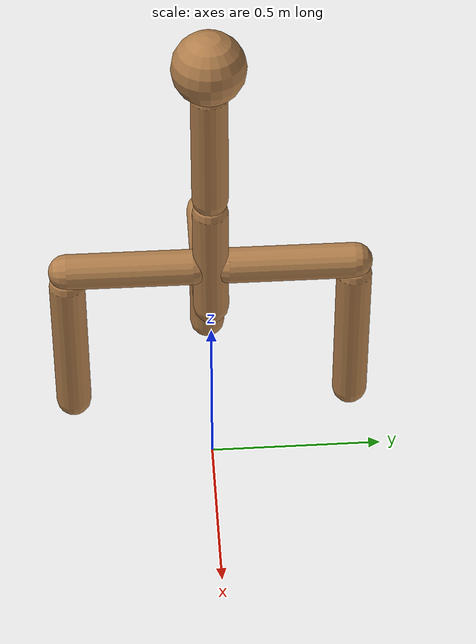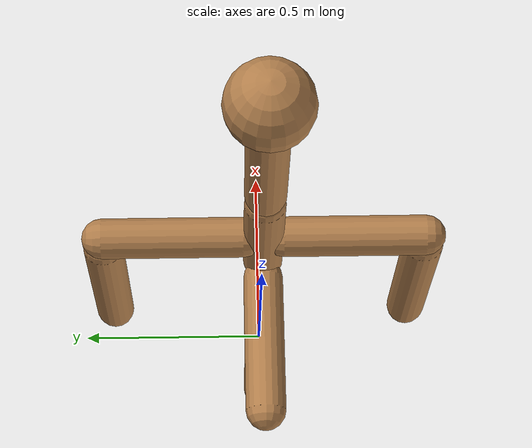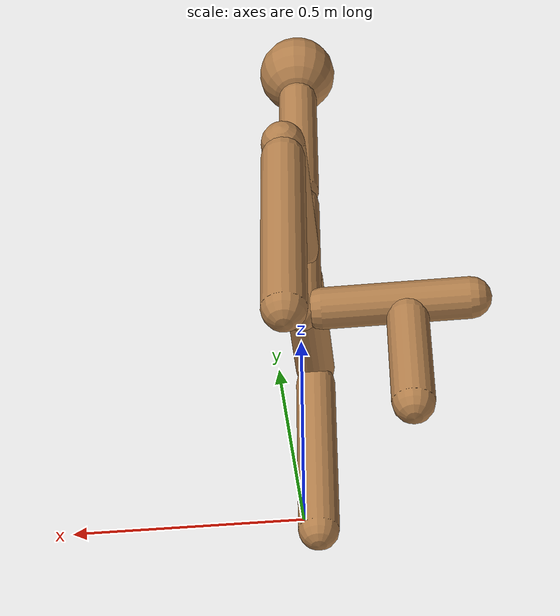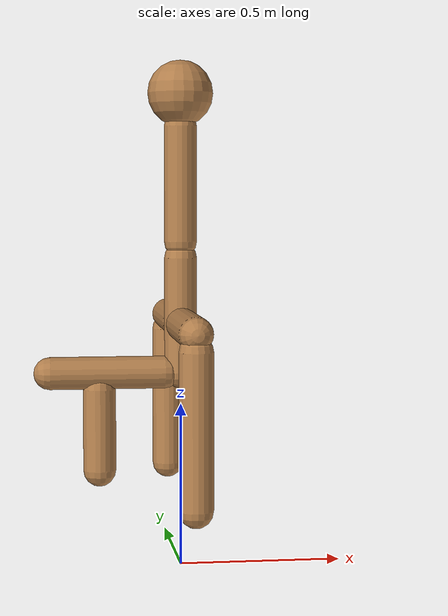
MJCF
<?xml version='1.0' encoding='UTF-8'?>
<!-- Universal Animal Template: unimal -->
<mujoco model="unimal">
  <compiler angle="degree"/>
  <size njmax="2000" nconmax="500"/>
  <option timestep=".005">
    <flag filterparent="disable"/>
  </option>
  <!-- Common defaults to make search space tractable -->
  <default>
    <!-- Define motor defaults -->
    <motor ctrlrange="-1 1" ctrllimited="true"/>
    <!-- Define joint defaults -->
    <default class="normal_joint">
      <joint type="hinge" damping="1" stiffness="1" armature="1" limited="true" range="-120 120" solimplimit="0 0.99 0.01"/>
    </default>
    <default class="walker_joint">
      <joint type="hinge" damping="0.2" stiffness="1" armature=".01" limited="true" range="-120 120" solimplimit="0 0.99 0.01"/>
    </default>
    <default class="stiff_joint">
      <joint type="hinge" damping="5" stiffness="10" armature=".01" limited="true" solimplimit="0 0.99 0.01"/>
    </default>
    <default class="free">
      <joint limited="false" damping="0" armature="0" stiffness="0"/>
    </default>
    <default class="growth_site">
      <site size="1e-6 1e-6 1e-6"/>
    </default>
    <default class="torso_growth_site">
      <site size="1e-6 1e-6 1e-6"/>
    </default>
    <default class="mirror_growth_site">
      <site size="1e-6 1e-6 1e-6"/>
    </default>
    <default class="btm_pos_site">
      <site size="1e-6 1e-6 1e-6"/>
    </default>
    <default class="box_face_site">
      <site size="1e-6 1e-6 1e-6"/>
    </default>
    <default class="imu_vel">
      <site type="box" size="0.05" rgba="1 0 0 0"/>
    </default>
    <default class="touch_site">
      <site group="3" rgba="0 0 1 .3"/>
    </default>
    <default class="food_site">
      <site material="food" size="0.15"/>
    </default>
    <!-- Define geom defaults -->
    <geom type="capsule" condim="3" friction="0.7 0.1 0.1" material="self"/>
  </default>
  <worldbody>
    <light diffuse="1 1 1" directional="true" exponent="1" pos="0 0 8" specular="0.1 0.1 0.1" dir="0 0 -1"/>
    <!-- Programatically generated xml goes here -->
    <body name="torso/0" pos="0 0 1.45">
      <joint name="root" type="free" class="free"/>
      <site name="root" class="imu_vel"/>
      <geom name="torso/0" type="sphere" size="0.1" condim="3" density="900"/>
      <camera name="side" pos="0 -7 2" xyaxes="1 0 0 0 1 2" mode="trackcom"/>
      <site name="torso/0" class="growth_site" pos="0 0 0"/>
      <site name="torso/btm_pos/0" class="btm_pos_site" pos="0 0 -0.1"/>
      <site name="torso/touch/0" class="touch_site" size="0.11"/>
      <site name="torso/horizontal_y/0" class="torso_growth_site" pos="-0.1 0 0"/>
      <body name="limb/0" pos="0.0 0.0 -0.1">
        <joint name="limbx/0" type="hinge" class="normal_joint" range="-30 0" pos="0.0 0.0 0.05" axis="1.0 0.0 0.0"/>
        <geom name="limb/0" type="capsule" fromto="0.0 0.0 0.0 0.0 0.0 -0.35" size="0.05" density="800"/>
        <site name="limb/mid/0" class="growth_site" pos="0.0 0.0 -0.2"/>
        <site name="limb/btm/0" class="growth_site" pos="0.0 0.0 -0.35"/>
        <site name="limb/btm_pos/0" class="btm_pos_site" pos="0.0 0.0 -0.35"/>
        <site name="limb/touch/0" class="touch_site" size="0.060000000000000005" fromto="0.0 0.0 0.0 0.0 0.0 -0.35" type="capsule"/>
        <body name="limb/18" pos="0.0 0.0 -0.4">
          <joint name="limbx/18" type="hinge" class="normal_joint" range="-30 60" pos="0.0 0.0 0.05" axis="1.0 0.0 0.0"/>
          <geom name="limb/18" type="capsule" fromto="0.0 0.0 0.0 0.0 0.0 -0.35" size="0.05" density="800"/>
          <site name="limb/mid/18" class="growth_site" pos="0.0 0.0 -0.2"/>
          <site name="limb/btm/18" class="growth_site" pos="0.0 0.0 -0.35"/>
          <site name="limb/btm_pos/18" class="btm_pos_site" pos="0.0 0.0 -0.35"/>
          <site name="limb/touch/18" class="touch_site" size="0.060000000000000005" fromto="0.0 0.0 0.0 0.0 0.0 -0.35" type="capsule"/>
          <body name="limb/19" pos="-0.05 0.0 -0.35">
            <joint name="limbx/19" type="hinge" class="normal_joint" range="0 90" pos="0.05 0.0 0.0" axis="0.0 0.0 -1.0"/>
            <joint name="limby/19" type="hinge" class="normal_joint" range="-60 0" pos="0.05 0.0 0.0" axis="0.0 1.0 0.0"/>
            <geom name="limb/19" type="capsule" fromto="0.0 0.0 0.0 -0.35 0.0 0.0" size="0.05" density="800"/>
            <site name="limb/mid/19" class="growth_site" pos="-0.2 0.0 0.0"/>
            <site name="limb/btm/19" class="growth_site" pos="-0.35 0.0 0.0"/>
            <site name="limb/btm_pos/19" class="btm_pos_site" pos="-0.35 0.0 0.0"/>
            <site name="limb/touch/19" class="touch_site" size="0.060000000000000005" fromto="0.0 0.0 0.0 -0.35 0.0 0.0" type="capsule"/>
            <body name="limb/20" pos="-0.2 0.0 -0.05">
              <joint name="limby/20" type="hinge" class="normal_joint" range="-30 30" pos="0.0 0.0 0.05" axis="0.0 1.0 0.0"/>
              <geom name="limb/20" type="capsule" fromto="0.0 0.0 0.0 0.0 0.0 -0.25" size="0.05" density="800"/>
              <site name="limb/mid/20" class="growth_site" pos="0.0 0.0 -0.15"/>
              <site name="limb/btm/20" class="growth_site" pos="0.0 0.0 -0.25"/>
              <site name="limb/btm_pos/20" class="btm_pos_site" pos="0.0 0.0 -0.3"/>
              <site name="limb/touch/20" class="touch_site" size="0.060000000000000005" fromto="0.0 0.0 0.0 0.0 0.0 -0.25" type="capsule"/>
            </body>
          </body>
          <body name="limb/24" pos="0.0 0.05 -0.2">
            <joint name="limbx/24" type="hinge" class="normal_joint" range="-30 0" pos="0.0 -0.05 0.0" axis="1.0 0.0 0.0"/>
            <geom name="limb/24" type="capsule" fromto="0.0 0.0 0.0 0.0 0.35 0.0" size="0.05" density="800"/>
            <site name="limb/mid/24" class="mirror_growth_site" pos="0.0 0.2 0.0"/>
            <site name="limb/btm/24" class="mirror_growth_site" pos="0.0 0.35 0.0"/>
            <site name="limb/btm_pos/24" class="btm_pos_site" pos="0.0 0.4 0.0"/>
            <site name="limb/touch/24" class="touch_site" size="0.060000000000000005" fromto="0.0 0.0 0.0 0.0 0.35 0.0" type="capsule"/>
            <body name="limb/26" pos="0.0 0.35 -0.05">
              <joint name="limbx/26" type="hinge" class="normal_joint" range="0 45" pos="0.0 0.0 0.05" axis="1.0 0.0 0.0"/>
              <geom name="limb/26" type="capsule" fromto="0.0 0.0 0.0 0.0 0.0 -0.45" size="0.05" density="800"/>
              <site name="limb/mid/26" class="mirror_growth_site" pos="0.0 0.0 -0.25"/>
              <site name="limb/btm/26" class="mirror_growth_site" pos="0.0 0.0 -0.45"/>
              <site name="limb/btm_pos/26" class="btm_pos_site" pos="0.0 0.0 -0.5"/>
              <site name="limb/touch/26" class="touch_site" size="0.060000000000000005" fromto="0.0 0.0 0.0 0.0 0.0 -0.45" type="capsule"/>
            </body>
          </body>
          <body name="limb/25" pos="0.0 -0.05 -0.2">
            <joint name="limbx/25" type="hinge" class="normal_joint" range="-30 0" pos="0.0 0.05 0.0" axis="1.0 0.0 -0.0"/>
            <geom name="limb/25" type="capsule" fromto="0.0 0.0 0.0 0.0 -0.35 0.0" size="0.05" density="800"/>
            <site name="limb/mid/25" class="mirror_growth_site" pos="0.0 -0.2 0.0"/>
            <site name="limb/btm/25" class="mirror_growth_site" pos="0.0 -0.35 0.0"/>
            <site name="limb/btm_pos/25" class="btm_pos_site" pos="0.0 -0.4 0.0"/>
            <site name="limb/touch/25" class="touch_site" size="0.060000000000000005" fromto="0.0 0.0 0.0 0.0 -0.35 0.0" type="capsule"/>
            <body name="limb/27" pos="0.0 -0.35 -0.05">
              <joint name="limbx/27" type="hinge" class="normal_joint" range="0 45" pos="0.0 0.0 0.05" axis="1.0 0.0 0.0"/>
              <geom name="limb/27" type="capsule" fromto="0.0 0.0 0.0 0.0 0.0 -0.45" size="0.05" density="800"/>
              <site name="limb/mid/27" class="mirror_growth_site" pos="0.0 0.0 -0.25"/>
              <site name="limb/btm/27" class="mirror_growth_site" pos="0.0 0.0 -0.45"/>
              <site name="limb/btm_pos/27" class="btm_pos_site" pos="0.0 0.0 -0.5"/>
              <site name="limb/touch/27" class="touch_site" size="0.060000000000000005" fromto="0.0 0.0 0.0 0.0 0.0 -0.45" type="capsule"/>
            </body>
          </body>
        </body>
      </body>
    </body>
  </worldbody>
  <actuator>
    <motor joint="limbx/0" gear="250" name="limbx/0"/>
    <motor joint="limbx/18" gear="200" name="limbx/18"/>
    <motor joint="limbx/19" gear="250" name="limbx/19"/>
    <motor joint="limby/19" gear="300" name="limby/19"/>
    <motor joint="limby/20" gear="150" name="limby/20"/>
    <motor joint="limbx/24" gear="200" name="limbx/24"/>
    <motor joint="limbx/26" gear="250" name="limbx/26"/>
    <motor joint="limbx/25" gear="200" name="limbx/25"/>
    <motor joint="limbx/27" gear="250" name="limbx/27"/>
  </actuator>
  <sensor>
    <accelerometer name="torso_accel" site="root"/>
    <gyro name="torso_gyro" site="root"/>
    <velocimeter name="torso_vel" site="root"/>
    <subtreeangmom name="unimal_am" body="torso/0"/>
    <touch name="torso/0" site="torso/touch/0"/>
    <touch name="limb/0" site="limb/touch/0"/>
    <touch name="limb/18" site="limb/touch/18"/>
    <touch name="limb/19" site="limb/touch/19"/>
    <touch name="limb/20" site="limb/touch/20"/>
    <touch name="limb/24" site="limb/touch/24"/>
    <touch name="limb/26" site="limb/touch/26"/>
    <touch name="limb/25" site="limb/touch/25"/>
    <touch name="limb/27" site="limb/touch/27"/>
  </sensor>
  <!-- Add hfield assets -->
  <asset/>
  <!-- List of contacts to exclude -->
  <contact>
    <exclude name="limb/24:limb/25" body1="limb/24" body2="limb/25"/>
  </contact>
  <!-- Define material, texture etc -->
  <asset>
    <material name="grid" texture="grid" texrepeat="1 1" texuniform="true" reflectance="0.1"/>
    <material name="hfield" texture="hfield" texrepeat="1 1" texuniform="true" reflectance="0.1"/>
    <material name="wall" texture="wall" texrepeat="1 1" texuniform="true" reflectance=".5"/>
    <material name="platform" texture="platform" texrepeat="1 1" texuniform="true" reflectance=".5"/>
    <material name="boundary" texture="boundary" texrepeat="1 1" texuniform="true" reflectance=".5"/>
    <material name="jump" texture="jump" texrepeat="1 1" texuniform="true" reflectance=".5"/>
    <material name="goal" rgba="1 0 0 1"/>
    <material name="food" rgba="0 0 1 1" emission="1"/>
    <material name="init_position" rgba="0 1 0 0.7"/>
    <material name="self" rgba=".7 .5 .3 1"/>
    <material name="self_invisible" rgba=".7 .5 .3 0"/>
    <material name="self_default" rgba=".7 .5 .3 1"/>
    <material name="self_highlight" rgba="0 .5 .3 1"/>
    <material name="effector" rgba=".7 .4 .2 1"/>
    <material name="effector_default" rgba=".7 .4 .2 1"/>
    <material name="effector_highlight" rgba="0 .5 .3 1"/>
    <material name="decoration" rgba=".3 .5 .7 1"/>
    <material name="eye" rgba="0 .2 1 1"/>
    <material name="target" rgba=".6 .3 .3 1"/>
    <material name="target_default" rgba=".6 .3 .3 1"/>
    <material name="target_highlight" rgba=".6 .3 .3 .4"/>
    <material name="site" rgba=".5 .5 .5 .3"/>
    <material name="ball" texture="ball"/>
  </asset>
  <asset>
    <texture name="grid" type="2d" builtin="checker" rgb1="0.4 0.4 0.4" rgb2="0.4 0.4 0.4" width="300" height="300" mark="edge" markrgb="0.2 0.2 0.2"/>
    <texture name="hfield" type="2d" builtin="checker" rgb1="0.4 0.4 0.4" rgb2="0.4 0.4 0.4" width="300" height="300" mark="edge" markrgb="0.2 0.2 0.2"/>
    <texture name="wall" type="2d" builtin="flat" rgb1="0.9 0.7 0" rgb2="0.9 0.7 0" width="300" height="300"/>
    <texture name="platform" type="2d" builtin="flat" rgb1="0.3 0 0.8" rgb2="0.3 0 0.8" width="300" height="300"/>
    <texture name="boundary" type="2d" builtin="flat" rgb1="0.3 0.3 0.3" rgb2="0.3 0.3 0.3" width="300" height="300"/>
    <texture name="jump" type="2d" builtin="flat" rgb1="0.3 0.3 0.3" rgb2="0.3 0.3 0.3" width="300" height="300"/>
    <texture name="skybox" type="skybox" builtin="gradient" rgb1="1 1 1" rgb2="0.6 0.6 0.6" width="800" height="800"/>
    <texture name="ball" builtin="checker" mark="cross" width="151" height="151" rgb1="0.1 0.1 0.1" rgb2="0.9 0.9 0.9" markrgb="1 1 1"/>
  </asset>
  <visual>
    <headlight ambient="0.6 0.6 0.6" diffuse="0.3 0.3 0.3" specular="0 0 0"/>
    <map znear=".01" shadowclip="0.5"/>
    <quality shadowsize="16384"/>
  </visual>
</mujoco>
